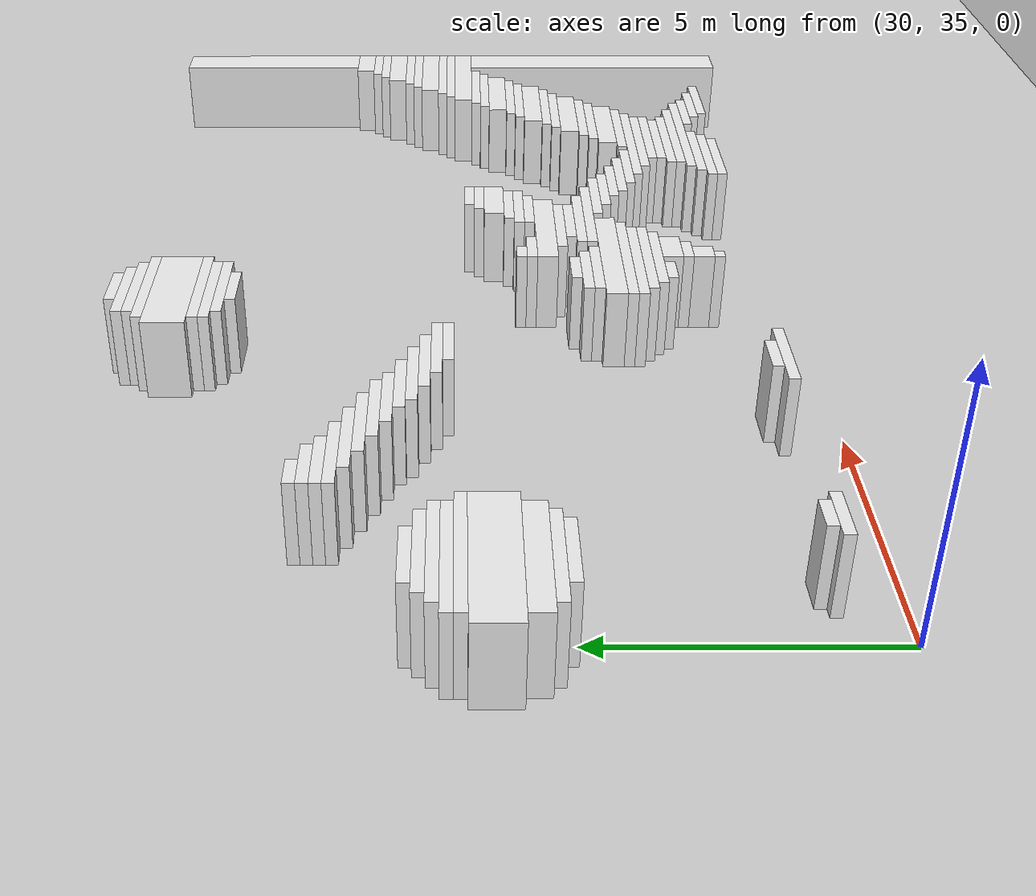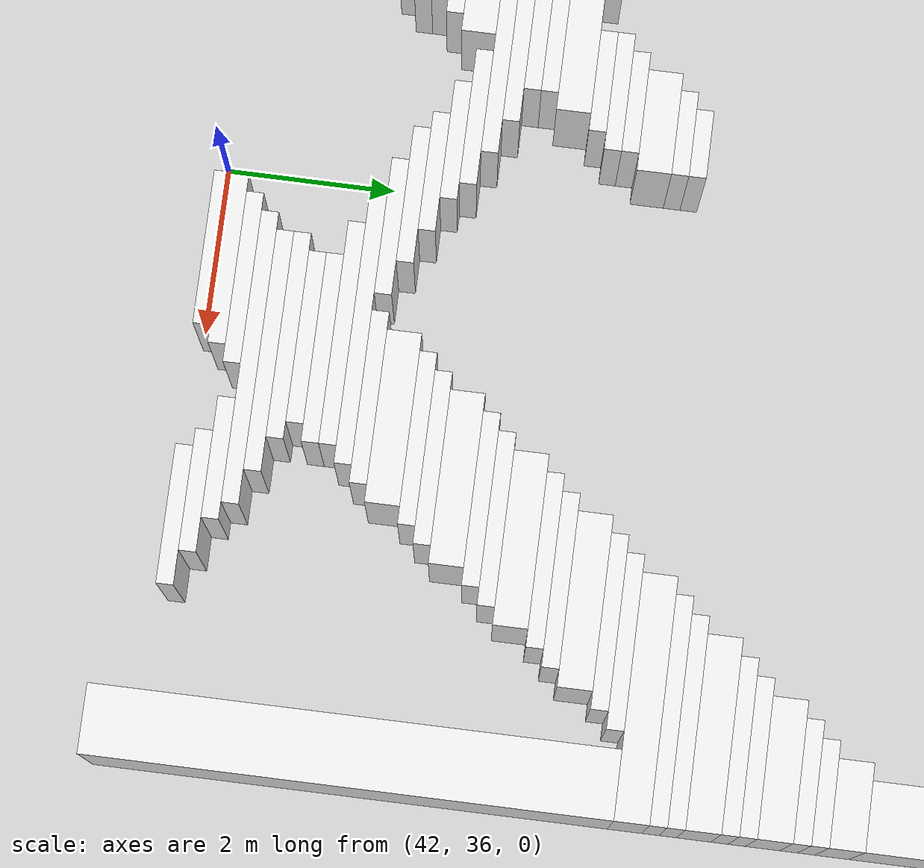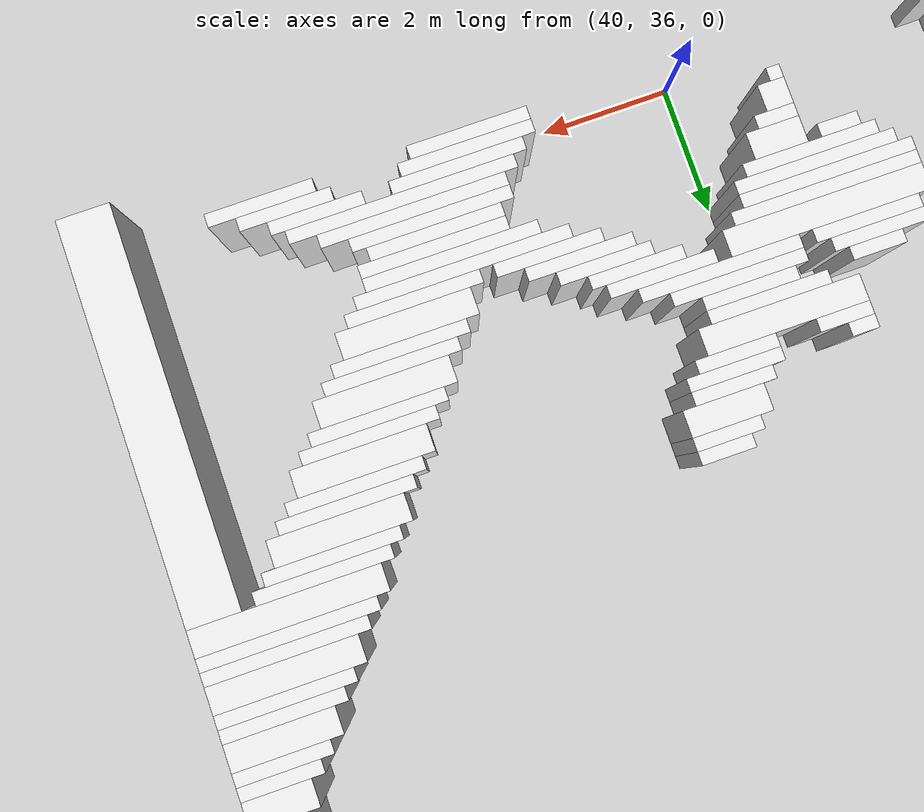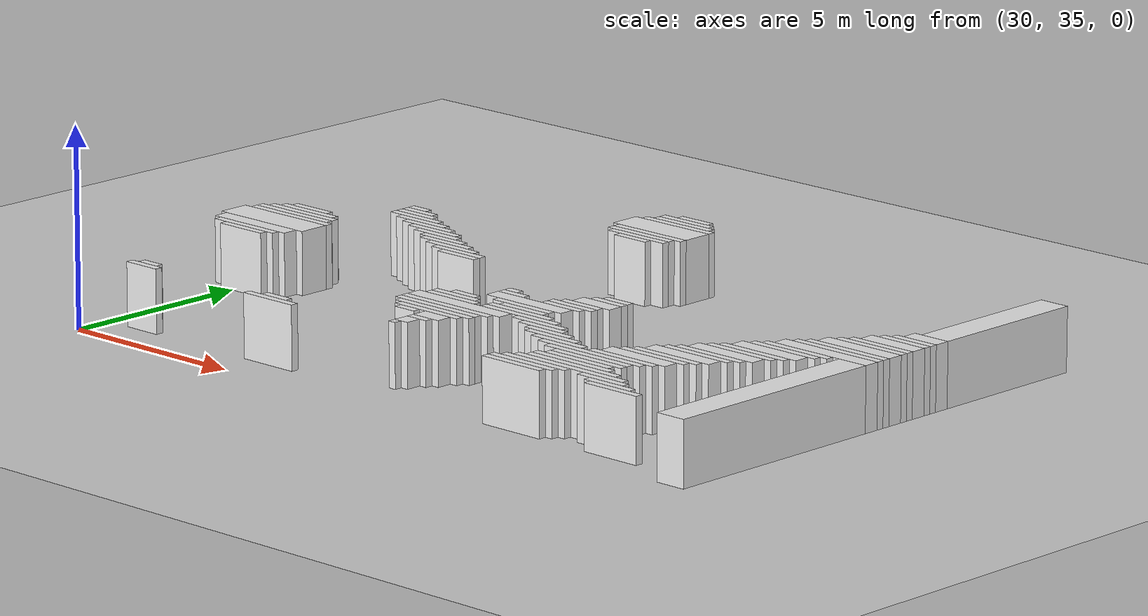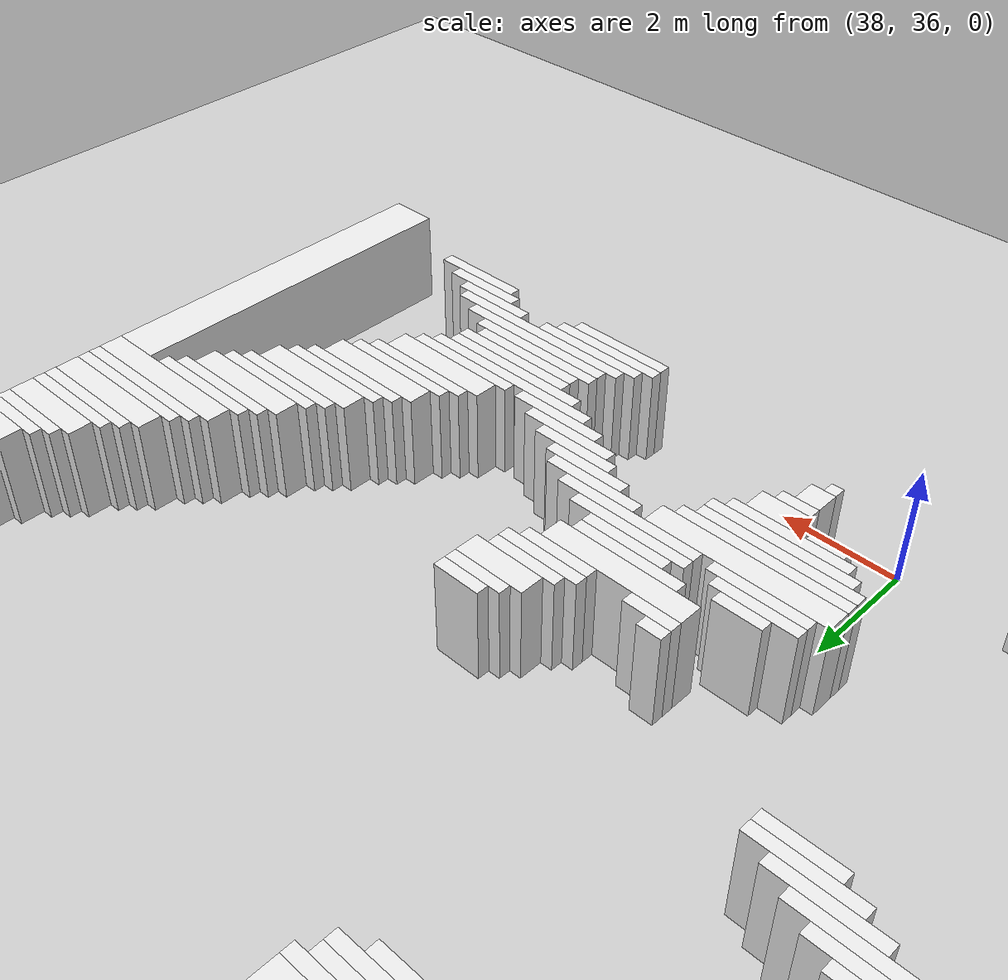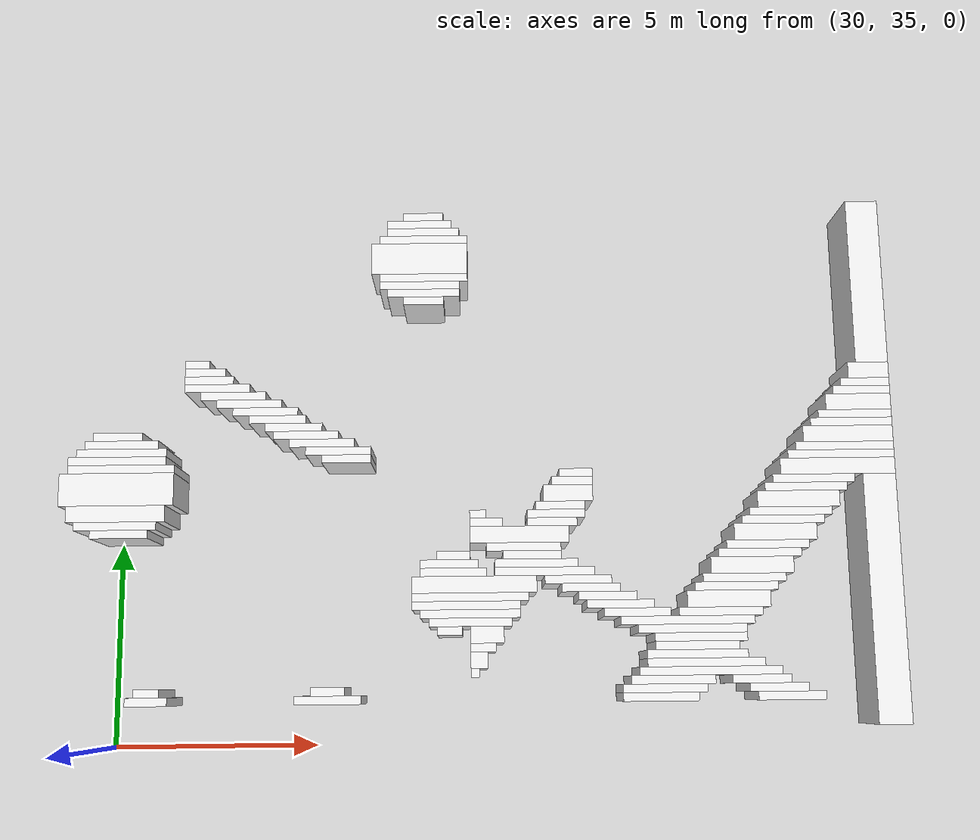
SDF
<sdf version="1.7">
 <world name="default">
  <model name="ground_plane">
   <static>1</static>
   <link name="link">
    <collision name="collision">
     <geometry><plane><normal>0 0 1</normal><size>120 120</size></plane></geometry>
    </collision>
    <visual name="visual">
     <geometry><plane><normal>0 0 1</normal><size>120 120</size></plane></geometry>
     <material>
      <script><uri>file://media/materials/scripts/gazebo.material</uri><name>Gazebo/Grey</name></script>
     </material>
    </visual>
   </link>
  </model>
  <model name="random_complex_03_model">
   <static>1</static>
   <link name="obs_7">
    <pose>37.7000 48.1000 0.8000 0 0 0</pose>
    <collision name="obs_7_col"><geometry><box><size>1.0000 0.2000 1.6000</size></box></geometry></collision>
    <visual name="obs_7_vis">
     <geometry><box><size>1.0000 0.2000 1.6000</size></box></geometry>
     <material>
      <script><uri>file://media/materials/scripts/gazebo.material</uri><name>Gazebo/White</name></script>
     </material>
    </visual>
   </link>
   <link name="obs_12">
    <pose>37.6000 47.9000 0.8000 0 0 0</pose>
    <collision name="obs_12_col"><geometry><box><size>1.6000 0.2000 1.6000</size></box></geometry></collision>
    <visual name="obs_12_vis">
     <geometry><box><size>1.6000 0.2000 1.6000</size></box></geometry>
     <material>
      <script><uri>file://media/materials/scripts/gazebo.material</uri><name>Gazebo/White</name></script>
     </material>
    </visual>
   </link>
   <link name="obs_17">
    <pose>37.7000 47.7000 0.8000 0 0 0</pose>
    <collision name="obs_17_col"><geometry><box><size>1.8000 0.2000 1.6000</size></box></geometry></collision>
    <visual name="obs_17_vis">
     <geometry><box><size>1.8000 0.2000 1.6000</size></box></geometry>
     <material>
      <script><uri>file://media/materials/scripts/gazebo.material</uri><name>Gazebo/White</name></script>
     </material>
    </visual>
   </link>
   <link name="obs_20">
    <pose>37.7000 47.5000 0.8000 0 0 0</pose>
    <collision name="obs_20_col"><geometry><box><size>2.2000 0.2000 1.6000</size></box></geometry></collision>
    <visual name="obs_20_vis">
     <geometry><box><size>2.2000 0.2000 1.6000</size></box></geometry>
     <material>
      <script><uri>file://media/materials/scripts/gazebo.material</uri><name>Gazebo/White</name></script>
     </material>
    </visual>
   </link>
   <link name="obs_32">
    <pose>37.6000 47.0000 0.8000 0 0 0</pose>
    <collision name="obs_32_col"><geometry><box><size>2.4000 0.8000 1.6000</size></box></geometry></collision>
    <visual name="obs_32_vis">
     <geometry><box><size>2.4000 0.8000 1.6000</size></box></geometry>
     <material>
      <script><uri>file://media/materials/scripts/gazebo.material</uri><name>Gazebo/White</name></script>
     </material>
    </visual>
   </link>
   <link name="obs_37">
    <pose>37.7000 46.5000 0.8000 0 0 0</pose>
    <collision name="obs_37_col"><geometry><box><size>2.2000 0.2000 1.6000</size></box></geometry></collision>
    <visual name="obs_37_vis">
     <geometry><box><size>2.2000 0.2000 1.6000</size></box></geometry>
     <material>
      <script><uri>file://media/materials/scripts/gazebo.material</uri><name>Gazebo/White</name></script>
     </material>
    </visual>
   </link>
   <link name="obs_41">
    <pose>37.6000 46.3000 0.8000 0 0 0</pose>
    <collision name="obs_41_col"><geometry><box><size>2.0000 0.2000 1.6000</size></box></geometry></collision>
    <visual name="obs_41_vis">
     <geometry><box><size>2.0000 0.2000 1.6000</size></box></geometry>
     <material>
      <script><uri>file://media/materials/scripts/gazebo.material</uri><name>Gazebo/White</name></script>
     </material>
    </visual>
   </link>
   <link name="obs_46">
    <pose>37.7000 46.1000 0.8000 0 0 0</pose>
    <collision name="obs_46_col"><geometry><box><size>1.8000 0.2000 1.6000</size></box></geometry></collision>
    <visual name="obs_46_vis">
     <geometry><box><size>1.8000 0.2000 1.6000</size></box></geometry>
     <material>
      <script><uri>file://media/materials/scripts/gazebo.material</uri><name>Gazebo/White</name></script>
     </material>
    </visual>
   </link>
   <link name="obs_52">
    <pose>37.7000 45.9000 0.8000 0 0 0</pose>
    <collision name="obs_52_col"><geometry><box><size>1.0000 0.2000 1.6000</size></box></geometry></collision>
    <visual name="obs_52_vis">
     <geometry><box><size>1.0000 0.2000 1.6000</size></box></geometry>
     <material>
      <script><uri>file://media/materials/scripts/gazebo.material</uri><name>Gazebo/White</name></script>
     </material>
    </visual>
   </link>
   <link name="obs_79">
    <pose>48.8000 46.3000 0.8000 0 0 0</pose>
    <collision name="obs_79_col"><geometry><box><size>0.8000 4.2000 1.6000</size></box></geometry></collision>
    <visual name="obs_79_vis">
     <geometry><box><size>0.8000 4.2000 1.6000</size></box></geometry>
     <material>
      <script><uri>file://media/materials/scripts/gazebo.material</uri><name>Gazebo/White</name></script>
     </material>
    </visual>
   </link>
   <link name="obs_86">
    <pose>32.1000 44.3000 0.8000 0 0 0</pose>
    <collision name="obs_86_col"><geometry><box><size>0.6000 0.2000 1.6000</size></box></geometry></collision>
    <visual name="obs_86_vis">
     <geometry><box><size>0.6000 0.2000 1.6000</size></box></geometry>
     <material>
      <script><uri>file://media/materials/scripts/gazebo.material</uri><name>Gazebo/White</name></script>
     </material>
    </visual>
   </link>
   <link name="obs_89">
    <pose>32.3000 44.1000 0.8000 0 0 0</pose>
    <collision name="obs_89_col"><geometry><box><size>1.0000 0.2000 1.6000</size></box></geometry></collision>
    <visual name="obs_89_vis">
     <geometry><box><size>1.0000 0.2000 1.6000</size></box></geometry>
     <material>
      <script><uri>file://media/materials/scripts/gazebo.material</uri><name>Gazebo/White</name></script>
     </material>
    </visual>
   </link>
   <link name="obs_90">
    <pose>48.7000 44.0000 0.8000 0 0 0</pose>
    <collision name="obs_90_col"><geometry><box><size>1.0000 0.4000 1.6000</size></box></geometry></collision>
    <visual name="obs_90_vis">
     <geometry><box><size>1.0000 0.4000 1.6000</size></box></geometry>
     <material>
      <script><uri>file://media/materials/scripts/gazebo.material</uri><name>Gazebo/White</name></script>
     </material>
    </visual>
   </link>
   <link name="obs_93">
    <pose>32.4000 43.9000 0.8000 0 0 0</pose>
    <collision name="obs_93_col"><geometry><box><size>1.2000 0.2000 1.6000</size></box></geometry></collision>
    <visual name="obs_93_vis">
     <geometry><box><size>1.2000 0.2000 1.6000</size></box></geometry>
     <material>
      <script><uri>file://media/materials/scripts/gazebo.material</uri><name>Gazebo/White</name></script>
     </material>
    </visual>
   </link>
   <link name="obs_98">
    <pose>32.6000 43.7000 0.8000 0 0 0</pose>
    <collision name="obs_98_col"><geometry><box><size>1.6000 0.2000 1.6000</size></box></geometry></collision>
    <visual name="obs_98_vis">
     <geometry><box><size>1.6000 0.2000 1.6000</size></box></geometry>
     <material>
      <script><uri>file://media/materials/scripts/gazebo.material</uri><name>Gazebo/White</name></script>
     </material>
    </visual>
   </link>
   <link name="obs_99">
    <pose>48.6000 43.7000 0.8000 0 0 0</pose>
    <collision name="obs_99_col"><geometry><box><size>1.2000 0.2000 1.6000</size></box></geometry></collision>
    <visual name="obs_99_vis">
     <geometry><box><size>1.2000 0.2000 1.6000</size></box></geometry>
     <material>
      <script><uri>file://media/materials/scripts/gazebo.material</uri><name>Gazebo/White</name></script>
     </material>
    </visual>
   </link>
   <link name="obs_106">
    <pose>33.0000 43.5000 0.8000 0 0 0</pose>
    <collision name="obs_106_col"><geometry><box><size>1.6000 0.2000 1.6000</size></box></geometry></collision>
    <visual name="obs_106_vis">
     <geometry><box><size>1.6000 0.2000 1.6000</size></box></geometry>
     <material>
      <script><uri>file://media/materials/scripts/gazebo.material</uri><name>Gazebo/White</name></script>
     </material>
    </visual>
   </link>
   <link name="obs_107">
    <pose>48.5000 43.5000 0.8000 0 0 0</pose>
    <collision name="obs_107_col"><geometry><box><size>1.4000 0.2000 1.6000</size></box></geometry></collision>
    <visual name="obs_107_vis">
     <geometry><box><size>1.4000 0.2000 1.6000</size></box></geometry>
     <material>
      <script><uri>file://media/materials/scripts/gazebo.material</uri><name>Gazebo/White</name></script>
     </material>
    </visual>
   </link>
   <link name="obs_113">
    <pose>33.4000 43.3000 0.8000 0 0 0</pose>
    <collision name="obs_113_col"><geometry><box><size>1.6000 0.2000 1.6000</size></box></geometry></collision>
    <visual name="obs_113_vis">
     <geometry><box><size>1.6000 0.2000 1.6000</size></box></geometry>
     <material>
      <script><uri>file://media/materials/scripts/gazebo.material</uri><name>Gazebo/White</name></script>
     </material>
    </visual>
   </link>
   <link name="obs_114">
    <pose>48.4000 43.2000 0.8000 0 0 0</pose>
    <collision name="obs_114_col"><geometry><box><size>1.6000 0.4000 1.6000</size></box></geometry></collision>
    <visual name="obs_114_vis">
     <geometry><box><size>1.6000 0.4000 1.6000</size></box></geometry>
     <material>
      <script><uri>file://media/materials/scripts/gazebo.material</uri><name>Gazebo/White</name></script>
     </material>
    </visual>
   </link>
   <link name="obs_119">
    <pose>33.8000 43.1000 0.8000 0 0 0</pose>
    <collision name="obs_119_col"><geometry><box><size>1.6000 0.2000 1.6000</size></box></geometry></collision>
    <visual name="obs_119_vis">
     <geometry><box><size>1.6000 0.2000 1.6000</size></box></geometry>
     <material>
      <script><uri>file://media/materials/scripts/gazebo.material</uri><name>Gazebo/White</name></script>
     </material>
    </visual>
   </link>
   <link name="obs_122">
    <pose>34.1000 42.9000 0.8000 0 0 0</pose>
    <collision name="obs_122_col"><geometry><box><size>1.4000 0.2000 1.6000</size></box></geometry></collision>
    <visual name="obs_122_vis">
     <geometry><box><size>1.4000 0.2000 1.6000</size></box></geometry>
     <material>
      <script><uri>file://media/materials/scripts/gazebo.material</uri><name>Gazebo/White</name></script>
     </material>
    </visual>
   </link>
   <link name="obs_123">
    <pose>48.3000 42.9000 0.8000 0 0 0</pose>
    <collision name="obs_123_col"><geometry><box><size>1.8000 0.2000 1.6000</size></box></geometry></collision>
    <visual name="obs_123_vis">
     <geometry><box><size>1.8000 0.2000 1.6000</size></box></geometry>
     <material>
      <script><uri>file://media/materials/scripts/gazebo.material</uri><name>Gazebo/White</name></script>
     </material>
    </visual>
   </link>
   <link name="obs_127">
    <pose>34.5000 42.7000 0.8000 0 0 0</pose>
    <collision name="obs_127_col"><geometry><box><size>1.4000 0.2000 1.6000</size></box></geometry></collision>
    <visual name="obs_127_vis">
     <geometry><box><size>1.4000 0.2000 1.6000</size></box></geometry>
     <material>
      <script><uri>file://media/materials/scripts/gazebo.material</uri><name>Gazebo/White</name></script>
     </material>
    </visual>
   </link>
   <link name="obs_128">
    <pose>48.2000 42.7000 0.8000 0 0 0</pose>
    <collision name="obs_128_col"><geometry><box><size>2.0000 0.2000 1.6000</size></box></geometry></collision>
    <visual name="obs_128_vis">
     <geometry><box><size>2.0000 0.2000 1.6000</size></box></geometry>
     <material>
      <script><uri>file://media/materials/scripts/gazebo.material</uri><name>Gazebo/White</name></script>
     </material>
    </visual>
   </link>
   <link name="obs_132">
    <pose>30.2000 42.5000 0.8000 0 0 0</pose>
    <collision name="obs_132_col"><geometry><box><size>1.2000 0.2000 1.6000</size></box></geometry></collision>
    <visual name="obs_132_vis">
     <geometry><box><size>1.2000 0.2000 1.6000</size></box></geometry>
     <material>
      <script><uri>file://media/materials/scripts/gazebo.material</uri><name>Gazebo/White</name></script>
     </material>
    </visual>
   </link>
   <link name="obs_133">
    <pose>34.8000 42.5000 0.8000 0 0 0</pose>
    <collision name="obs_133_col"><geometry><box><size>1.6000 0.2000 1.6000</size></box></geometry></collision>
    <visual name="obs_133_vis">
     <geometry><box><size>1.6000 0.2000 1.6000</size></box></geometry>
     <material>
      <script><uri>file://media/materials/scripts/gazebo.material</uri><name>Gazebo/White</name></script>
     </material>
    </visual>
   </link>
   <link name="obs_134">
    <pose>48.1000 42.4000 0.8000 0 0 0</pose>
    <collision name="obs_134_col"><geometry><box><size>2.2000 0.4000 1.6000</size></box></geometry></collision>
    <visual name="obs_134_vis">
     <geometry><box><size>2.2000 0.4000 1.6000</size></box></geometry>
     <material>
      <script><uri>file://media/materials/scripts/gazebo.material</uri><name>Gazebo/White</name></script>
     </material>
    </visual>
   </link>
   <link name="obs_136">
    <pose>30.3000 42.3000 0.8000 0 0 0</pose>
    <collision name="obs_136_col"><geometry><box><size>1.8000 0.2000 1.6000</size></box></geometry></collision>
    <visual name="obs_136_vis">
     <geometry><box><size>1.8000 0.2000 1.6000</size></box></geometry>
     <material>
      <script><uri>file://media/materials/scripts/gazebo.material</uri><name>Gazebo/White</name></script>
     </material>
    </visual>
   </link>
   <link name="obs_137">
    <pose>35.2000 42.3000 0.8000 0 0 0</pose>
    <collision name="obs_137_col"><geometry><box><size>1.6000 0.2000 1.6000</size></box></geometry></collision>
    <visual name="obs_137_vis">
     <geometry><box><size>1.6000 0.2000 1.6000</size></box></geometry>
     <material>
      <script><uri>file://media/materials/scripts/gazebo.material</uri><name>Gazebo/White</name></script>
     </material>
    </visual>
   </link>
   <link name="obs_144">
    <pose>30.3000 42.1000 0.8000 0 0 0</pose>
    <collision name="obs_144_col"><geometry><box><size>2.2000 0.2000 1.6000</size></box></geometry></collision>
    <visual name="obs_144_vis">
     <geometry><box><size>2.2000 0.2000 1.6000</size></box></geometry>
     <material>
      <script><uri>file://media/materials/scripts/gazebo.material</uri><name>Gazebo/White</name></script>
     </material>
    </visual>
   </link>
   <link name="obs_145">
    <pose>35.6000 42.1000 0.8000 0 0 0</pose>
    <collision name="obs_145_col"><geometry><box><size>1.6000 0.2000 1.6000</size></box></geometry></collision>
    <visual name="obs_145_vis">
     <geometry><box><size>1.6000 0.2000 1.6000</size></box></geometry>
     <material>
      <script><uri>file://media/materials/scripts/gazebo.material</uri><name>Gazebo/White</name></script>
     </material>
    </visual>
   </link>
   <link name="obs_146">
    <pose>48.0000 42.1000 0.8000 0 0 0</pose>
    <collision name="obs_146_col"><geometry><box><size>2.4000 0.2000 1.6000</size></box></geometry></collision>
    <visual name="obs_146_vis">
     <geometry><box><size>2.4000 0.2000 1.6000</size></box></geometry>
     <material>
      <script><uri>file://media/materials/scripts/gazebo.material</uri><name>Gazebo/White</name></script>
     </material>
    </visual>
   </link>
   <link name="obs_149">
    <pose>30.2000 41.9000 0.8000 0 0 0</pose>
    <collision name="obs_149_col"><geometry><box><size>2.4000 0.2000 1.6000</size></box></geometry></collision>
    <visual name="obs_149_vis">
     <geometry><box><size>2.4000 0.2000 1.6000</size></box></geometry>
     <material>
      <script><uri>file://media/materials/scripts/gazebo.material</uri><name>Gazebo/White</name></script>
     </material>
    </visual>
   </link>
   <link name="obs_150">
    <pose>35.8000 41.9000 0.8000 0 0 0</pose>
    <collision name="obs_150_col"><geometry><box><size>1.2000 0.2000 1.6000</size></box></geometry></collision>
    <visual name="obs_150_vis">
     <geometry><box><size>1.2000 0.2000 1.6000</size></box></geometry>
     <material>
      <script><uri>file://media/materials/scripts/gazebo.material</uri><name>Gazebo/White</name></script>
     </material>
    </visual>
   </link>
   <link name="obs_151">
    <pose>47.9000 41.9000 0.8000 0 0 0</pose>
    <collision name="obs_151_col"><geometry><box><size>2.6000 0.2000 1.6000</size></box></geometry></collision>
    <visual name="obs_151_vis">
     <geometry><box><size>2.6000 0.2000 1.6000</size></box></geometry>
     <material>
      <script><uri>file://media/materials/scripts/gazebo.material</uri><name>Gazebo/White</name></script>
     </material>
    </visual>
   </link>
   <link name="obs_153">
    <pose>30.3000 41.7000 0.8000 0 0 0</pose>
    <collision name="obs_153_col"><geometry><box><size>2.6000 0.2000 1.6000</size></box></geometry></collision>
    <visual name="obs_153_vis">
     <geometry><box><size>2.6000 0.2000 1.6000</size></box></geometry>
     <material>
      <script><uri>file://media/materials/scripts/gazebo.material</uri><name>Gazebo/White</name></script>
     </material>
    </visual>
   </link>
   <link name="obs_154">
    <pose>47.8000 41.6000 0.8000 0 0 0</pose>
    <collision name="obs_154_col"><geometry><box><size>2.8000 0.4000 1.6000</size></box></geometry></collision>
    <visual name="obs_154_vis">
     <geometry><box><size>2.8000 0.4000 1.6000</size></box></geometry>
     <material>
      <script><uri>file://media/materials/scripts/gazebo.material</uri><name>Gazebo/White</name></script>
     </material>
    </visual>
   </link>
   <link name="obs_156">
    <pose>41.4000 41.5000 0.8000 0 0 0</pose>
    <collision name="obs_156_col"><geometry><box><size>0.8000 0.2000 1.6000</size></box></geometry></collision>
    <visual name="obs_156_vis">
     <geometry><box><size>0.8000 0.2000 1.6000</size></box></geometry>
     <material>
      <script><uri>file://media/materials/scripts/gazebo.material</uri><name>Gazebo/White</name></script>
     </material>
    </visual>
   </link>
   <link name="obs_159">
    <pose>41.3000 41.3000 0.8000 0 0 0</pose>
    <collision name="obs_159_col"><geometry><box><size>1.0000 0.2000 1.6000</size></box></geometry></collision>
    <visual name="obs_159_vis">
     <geometry><box><size>1.0000 0.2000 1.6000</size></box></geometry>
     <material>
      <script><uri>file://media/materials/scripts/gazebo.material</uri><name>Gazebo/White</name></script>
     </material>
    </visual>
   </link>
   <link name="obs_160">
    <pose>47.2000 41.3000 0.8000 0 0 0</pose>
    <collision name="obs_160_col"><geometry><box><size>2.0000 0.2000 1.6000</size></box></geometry></collision>
    <visual name="obs_160_vis">
     <geometry><box><size>2.0000 0.2000 1.6000</size></box></geometry>
     <material>
      <script><uri>file://media/materials/scripts/gazebo.material</uri><name>Gazebo/White</name></script>
     </material>
    </visual>
   </link>
   <link name="obs_163">
    <pose>47.0000 41.1000 0.8000 0 0 0</pose>
    <collision name="obs_163_col"><geometry><box><size>2.0000 0.2000 1.6000</size></box></geometry></collision>
    <visual name="obs_163_vis">
     <geometry><box><size>2.0000 0.2000 1.6000</size></box></geometry>
     <material>
      <script><uri>file://media/materials/scripts/gazebo.material</uri><name>Gazebo/White</name></script>
     </material>
    </visual>
   </link>
   <link name="obs_164">
    <pose>30.2000 41.2000 0.8000 0 0 0</pose>
    <collision name="obs_164_col"><geometry><box><size>2.8000 0.8000 1.6000</size></box></geometry></collision>
    <visual name="obs_164_vis">
     <geometry><box><size>2.8000 0.8000 1.6000</size></box></geometry>
     <material>
      <script><uri>file://media/materials/scripts/gazebo.material</uri><name>Gazebo/White</name></script>
     </material>
    </visual>
   </link>
   <link name="obs_165">
    <pose>41.2000 41.0000 0.8000 0 0 0</pose>
    <collision name="obs_165_col"><geometry><box><size>1.2000 0.4000 1.6000</size></box></geometry></collision>
    <visual name="obs_165_vis">
     <geometry><box><size>1.2000 0.4000 1.6000</size></box></geometry>
     <material>
      <script><uri>file://media/materials/scripts/gazebo.material</uri><name>Gazebo/White</name></script>
     </material>
    </visual>
   </link>
   <link name="obs_169">
    <pose>46.8000 40.8000 0.8000 0 0 0</pose>
    <collision name="obs_169_col"><geometry><box><size>2.0000 0.4000 1.6000</size></box></geometry></collision>
    <visual name="obs_169_vis">
     <geometry><box><size>2.0000 0.4000 1.6000</size></box></geometry>
     <material>
      <script><uri>file://media/materials/scripts/gazebo.material</uri><name>Gazebo/White</name></script>
     </material>
    </visual>
   </link>
   <link name="obs_172">
    <pose>41.0000 40.7000 0.8000 0 0 0</pose>
    <collision name="obs_172_col"><geometry><box><size>1.2000 0.2000 1.6000</size></box></geometry></collision>
    <visual name="obs_172_vis">
     <geometry><box><size>1.2000 0.2000 1.6000</size></box></geometry>
     <material>
      <script><uri>file://media/materials/scripts/gazebo.material</uri><name>Gazebo/White</name></script>
     </material>
    </visual>
   </link>
   <link name="obs_173">
    <pose>30.2000 40.6000 0.8000 0 0 0</pose>
    <collision name="obs_173_col"><geometry><box><size>2.4000 0.4000 1.6000</size></box></geometry></collision>
    <visual name="obs_173_vis">
     <geometry><box><size>2.4000 0.4000 1.6000</size></box></geometry>
     <material>
      <script><uri>file://media/materials/scripts/gazebo.material</uri><name>Gazebo/White</name></script>
     </material>
    </visual>
   </link>
   <link name="obs_176">
    <pose>39.0000 40.5000 0.8000 0 0 0</pose>
    <collision name="obs_176_col"><geometry><box><size>0.4000 0.2000 1.6000</size></box></geometry></collision>
    <visual name="obs_176_vis">
     <geometry><box><size>0.4000 0.2000 1.6000</size></box></geometry>
     <material>
      <script><uri>file://media/materials/scripts/gazebo.material</uri><name>Gazebo/White</name></script>
     </material>
    </visual>
   </link>
   <link name="obs_177">
    <pose>40.9000 40.5000 0.8000 0 0 0</pose>
    <collision name="obs_177_col"><geometry><box><size>1.4000 0.2000 1.6000</size></box></geometry></collision>
    <visual name="obs_177_vis">
     <geometry><box><size>1.4000 0.2000 1.6000</size></box></geometry>
     <material>
      <script><uri>file://media/materials/scripts/gazebo.material</uri><name>Gazebo/White</name></script>
     </material>
    </visual>
   </link>
   <link name="obs_178">
    <pose>46.6000 40.5000 0.8000 0 0 0</pose>
    <collision name="obs_178_col"><geometry><box><size>2.0000 0.2000 1.6000</size></box></geometry></collision>
    <visual name="obs_178_vis">
     <geometry><box><size>2.0000 0.2000 1.6000</size></box></geometry>
     <material>
      <script><uri>file://media/materials/scripts/gazebo.material</uri><name>Gazebo/White</name></script>
     </material>
    </visual>
   </link>
   <link name="obs_182">
    <pose>30.2000 40.3000 0.8000 0 0 0</pose>
    <collision name="obs_182_col"><geometry><box><size>2.0000 0.2000 1.6000</size></box></geometry></collision>
    <visual name="obs_182_vis">
     <geometry><box><size>2.0000 0.2000 1.6000</size></box></geometry>
     <material>
      <script><uri>file://media/materials/scripts/gazebo.material</uri><name>Gazebo/White</name></script>
     </material>
    </visual>
   </link>
   <link name="obs_183">
    <pose>39.2000 40.3000 0.8000 0 0 0</pose>
    <collision name="obs_183_col"><geometry><box><size>0.8000 0.2000 1.6000</size></box></geometry></collision>
    <visual name="obs_183_vis">
     <geometry><box><size>0.8000 0.2000 1.6000</size></box></geometry>
     <material>
      <script><uri>file://media/materials/scripts/gazebo.material</uri><name>Gazebo/White</name></script>
     </material>
    </visual>
   </link>
   <link name="obs_184">
    <pose>40.8000 40.3000 0.8000 0 0 0</pose>
    <collision name="obs_184_col"><geometry><box><size>1.2000 0.2000 1.6000</size></box></geometry></collision>
    <visual name="obs_184_vis">
     <geometry><box><size>1.2000 0.2000 1.6000</size></box></geometry>
     <material>
      <script><uri>file://media/materials/scripts/gazebo.material</uri><name>Gazebo/White</name></script>
     </material>
    </visual>
   </link>
   <link name="obs_185">
    <pose>46.4000 40.3000 0.8000 0 0 0</pose>
    <collision name="obs_185_col"><geometry><box><size>2.0000 0.2000 1.6000</size></box></geometry></collision>
    <visual name="obs_185_vis">
     <geometry><box><size>2.0000 0.2000 1.6000</size></box></geometry>
     <material>
      <script><uri>file://media/materials/scripts/gazebo.material</uri><name>Gazebo/White</name></script>
     </material>
    </visual>
   </link>
   <link name="obs_190">
    <pose>30.3000 40.1000 0.8000 0 0 0</pose>
    <collision name="obs_190_col"><geometry><box><size>1.4000 0.2000 1.6000</size></box></geometry></collision>
    <visual name="obs_190_vis">
     <geometry><box><size>1.4000 0.2000 1.6000</size></box></geometry>
     <material>
      <script><uri>file://media/materials/scripts/gazebo.material</uri><name>Gazebo/White</name></script>
     </material>
    </visual>
   </link>
   <link name="obs_191">
    <pose>40.0000 40.0000 0.8000 0 0 0</pose>
    <collision name="obs_191_col"><geometry><box><size>2.4000 0.4000 1.6000</size></box></geometry></collision>
    <visual name="obs_191_vis">
     <geometry><box><size>2.4000 0.4000 1.6000</size></box></geometry>
     <material>
      <script><uri>file://media/materials/scripts/gazebo.material</uri><name>Gazebo/White</name></script>
     </material>
    </visual>
   </link>
   <link name="obs_192">
    <pose>46.2000 40.0000 0.8000 0 0 0</pose>
    <collision name="obs_192_col"><geometry><box><size>2.0000 0.4000 1.6000</size></box></geometry></collision>
    <visual name="obs_192_vis">
     <geometry><box><size>2.0000 0.4000 1.6000</size></box></geometry>
     <material>
      <script><uri>file://media/materials/scripts/gazebo.material</uri><name>Gazebo/White</name></script>
     </material>
    </visual>
   </link>
   <link name="obs_198">
    <pose>40.1000 39.7000 0.8000 0 0 0</pose>
    <collision name="obs_198_col"><geometry><box><size>1.8000 0.2000 1.6000</size></box></geometry></collision>
    <visual name="obs_198_vis">
     <geometry><box><size>1.8000 0.2000 1.6000</size></box></geometry>
     <material>
      <script><uri>file://media/materials/scripts/gazebo.material</uri><name>Gazebo/White</name></script>
     </material>
    </visual>
   </link>
   <link name="obs_199">
    <pose>46.0000 39.7000 0.8000 0 0 0</pose>
    <collision name="obs_199_col"><geometry><box><size>2.0000 0.2000 1.6000</size></box></geometry></collision>
    <visual name="obs_199_vis">
     <geometry><box><size>2.0000 0.2000 1.6000</size></box></geometry>
     <material>
      <script><uri>file://media/materials/scripts/gazebo.material</uri><name>Gazebo/White</name></script>
     </material>
    </visual>
   </link>
   <link name="obs_203">
    <pose>38.4000 39.5000 0.8000 0 0 0</pose>
    <collision name="obs_203_col"><geometry><box><size>0.8000 0.2000 1.6000</size></box></geometry></collision>
    <visual name="obs_203_vis">
     <geometry><box><size>0.8000 0.2000 1.6000</size></box></geometry>
     <material>
      <script><uri>file://media/materials/scripts/gazebo.material</uri><name>Gazebo/White</name></script>
     </material>
    </visual>
   </link>
   <link name="obs_204">
    <pose>40.3000 39.5000 0.8000 0 0 0</pose>
    <collision name="obs_204_col"><geometry><box><size>1.4000 0.2000 1.6000</size></box></geometry></collision>
    <visual name="obs_204_vis">
     <geometry><box><size>1.4000 0.2000 1.6000</size></box></geometry>
     <material>
      <script><uri>file://media/materials/scripts/gazebo.material</uri><name>Gazebo/White</name></script>
     </material>
    </visual>
   </link>
   <link name="obs_205">
    <pose>45.8000 39.5000 0.8000 0 0 0</pose>
    <collision name="obs_205_col"><geometry><box><size>2.0000 0.2000 1.6000</size></box></geometry></collision>
    <visual name="obs_205_vis">
     <geometry><box><size>2.0000 0.2000 1.6000</size></box></geometry>
     <material>
      <script><uri>file://media/materials/scripts/gazebo.material</uri><name>Gazebo/White</name></script>
     </material>
    </visual>
   </link>
   <link name="obs_209">
    <pose>38.3000 39.3000 0.8000 0 0 0</pose>
    <collision name="obs_209_col"><geometry><box><size>1.4000 0.2000 1.6000</size></box></geometry></collision>
    <visual name="obs_209_vis">
     <geometry><box><size>1.4000 0.2000 1.6000</size></box></geometry>
     <material>
      <script><uri>file://media/materials/scripts/gazebo.material</uri><name>Gazebo/White</name></script>
     </material>
    </visual>
   </link>
   <link name="obs_210">
    <pose>40.4000 39.3000 0.8000 0 0 0</pose>
    <collision name="obs_210_col"><geometry><box><size>2.0000 0.2000 1.6000</size></box></geometry></collision>
    <visual name="obs_210_vis">
     <geometry><box><size>2.0000 0.2000 1.6000</size></box></geometry>
     <material>
      <script><uri>file://media/materials/scripts/gazebo.material</uri><name>Gazebo/White</name></script>
     </material>
    </visual>
   </link>
   <link name="obs_214">
    <pose>45.6000 39.2000 0.8000 0 0 0</pose>
    <collision name="obs_214_col"><geometry><box><size>2.0000 0.4000 1.6000</size></box></geometry></collision>
    <visual name="obs_214_vis">
     <geometry><box><size>2.0000 0.4000 1.6000</size></box></geometry>
     <material>
      <script><uri>file://media/materials/scripts/gazebo.material</uri><name>Gazebo/White</name></script>
     </material>
    </visual>
   </link>
   <link name="obs_218">
    <pose>38.4000 39.1000 0.8000 0 0 0</pose>
    <collision name="obs_218_col"><geometry><box><size>1.6000 0.2000 1.6000</size></box></geometry></collision>
    <visual name="obs_218_vis">
     <geometry><box><size>1.6000 0.2000 1.6000</size></box></geometry>
     <material>
      <script><uri>file://media/materials/scripts/gazebo.material</uri><name>Gazebo/White</name></script>
     </material>
    </visual>
   </link>
   <link name="obs_219">
    <pose>40.6000 39.1000 0.8000 0 0 0</pose>
    <collision name="obs_219_col"><geometry><box><size>2.4000 0.2000 1.6000</size></box></geometry></collision>
    <visual name="obs_219_vis">
     <geometry><box><size>2.4000 0.2000 1.6000</size></box></geometry>
     <material>
      <script><uri>file://media/materials/scripts/gazebo.material</uri><name>Gazebo/White</name></script>
     </material>
    </visual>
   </link>
   <link name="obs_226">
    <pose>41.4000 38.9000 0.8000 0 0 0</pose>
    <collision name="obs_226_col"><geometry><box><size>1.6000 0.2000 1.6000</size></box></geometry></collision>
    <visual name="obs_226_vis">
     <geometry><box><size>1.6000 0.2000 1.6000</size></box></geometry>
     <material>
      <script><uri>file://media/materials/scripts/gazebo.material</uri><name>Gazebo/White</name></script>
     </material>
    </visual>
   </link>
   <link name="obs_227">
    <pose>45.4000 38.9000 0.8000 0 0 0</pose>
    <collision name="obs_227_col"><geometry><box><size>2.0000 0.2000 1.6000</size></box></geometry></collision>
    <visual name="obs_227_vis">
     <geometry><box><size>2.0000 0.2000 1.6000</size></box></geometry>
     <material>
      <script><uri>file://media/materials/scripts/gazebo.material</uri><name>Gazebo/White</name></script>
     </material>
    </visual>
   </link>
   <link name="obs_228">
    <pose>38.9000 38.8000 0.8000 0 0 0</pose>
    <collision name="obs_228_col"><geometry><box><size>3.0000 0.4000 1.6000</size></box></geometry></collision>
    <visual name="obs_228_vis">
     <geometry><box><size>3.0000 0.4000 1.6000</size></box></geometry>
     <material>
      <script><uri>file://media/materials/scripts/gazebo.material</uri><name>Gazebo/White</name></script>
     </material>
    </visual>
   </link>
   <link name="obs_231">
    <pose>41.7000 38.7000 0.8000 0 0 0</pose>
    <collision name="obs_231_col"><geometry><box><size>1.4000 0.2000 1.6000</size></box></geometry></collision>
    <visual name="obs_231_vis">
     <geometry><box><size>1.4000 0.2000 1.6000</size></box></geometry>
     <material>
      <script><uri>file://media/materials/scripts/gazebo.material</uri><name>Gazebo/White</name></script>
     </material>
    </visual>
   </link>
   <link name="obs_232">
    <pose>45.2000 38.7000 0.8000 0 0 0</pose>
    <collision name="obs_232_col"><geometry><box><size>2.0000 0.2000 1.6000</size></box></geometry></collision>
    <visual name="obs_232_vis">
     <geometry><box><size>2.0000 0.2000 1.6000</size></box></geometry>
     <material>
      <script><uri>file://media/materials/scripts/gazebo.material</uri><name>Gazebo/White</name></script>
     </material>
    </visual>
   </link>
   <link name="obs_239">
    <pose>38.8000 38.5000 0.8000 0 0 0</pose>
    <collision name="obs_239_col"><geometry><box><size>2.8000 0.2000 1.6000</size></box></geometry></collision>
    <visual name="obs_239_vis">
     <geometry><box><size>2.8000 0.2000 1.6000</size></box></geometry>
     <material>
      <script><uri>file://media/materials/scripts/gazebo.material</uri><name>Gazebo/White</name></script>
     </material>
    </visual>
   </link>
   <link name="obs_240">
    <pose>42.1000 38.5000 0.8000 0 0 0</pose>
    <collision name="obs_240_col"><geometry><box><size>1.4000 0.2000 1.6000</size></box></geometry></collision>
    <visual name="obs_240_vis">
     <geometry><box><size>1.4000 0.2000 1.6000</size></box></geometry>
     <material>
      <script><uri>file://media/materials/scripts/gazebo.material</uri><name>Gazebo/White</name></script>
     </material>
    </visual>
   </link>
   <link name="obs_241">
    <pose>45.0000 38.4000 0.8000 0 0 0</pose>
    <collision name="obs_241_col"><geometry><box><size>2.0000 0.4000 1.6000</size></box></geometry></collision>
    <visual name="obs_241_vis">
     <geometry><box><size>2.0000 0.4000 1.6000</size></box></geometry>
     <material>
      <script><uri>file://media/materials/scripts/gazebo.material</uri><name>Gazebo/White</name></script>
     </material>
    </visual>
   </link>
   <link name="obs_243">
    <pose>38.7000 38.3000 0.8000 0 0 0</pose>
    <collision name="obs_243_col"><geometry><box><size>2.6000 0.2000 1.6000</size></box></geometry></collision>
    <visual name="obs_243_vis">
     <geometry><box><size>2.6000 0.2000 1.6000</size></box></geometry>
     <material>
      <script><uri>file://media/materials/scripts/gazebo.material</uri><name>Gazebo/White</name></script>
     </material>
    </visual>
   </link>
   <link name="obs_244">
    <pose>42.4000 38.3000 0.8000 0 0 0</pose>
    <collision name="obs_244_col"><geometry><box><size>1.6000 0.2000 1.6000</size></box></geometry></collision>
    <visual name="obs_244_vis">
     <geometry><box><size>1.6000 0.2000 1.6000</size></box></geometry>
     <material>
      <script><uri>file://media/materials/scripts/gazebo.material</uri><name>Gazebo/White</name></script>
     </material>
    </visual>
   </link>
   <link name="obs_247">
    <pose>38.8000 38.1000 0.8000 0 0 0</pose>
    <collision name="obs_247_col"><geometry><box><size>2.4000 0.2000 1.6000</size></box></geometry></collision>
    <visual name="obs_247_vis">
     <geometry><box><size>2.4000 0.2000 1.6000</size></box></geometry>
     <material>
      <script><uri>file://media/materials/scripts/gazebo.material</uri><name>Gazebo/White</name></script>
     </material>
    </visual>
   </link>
   <link name="obs_248">
    <pose>42.8000 38.1000 0.8000 0 0 0</pose>
    <collision name="obs_248_col"><geometry><box><size>1.6000 0.2000 1.6000</size></box></geometry></collision>
    <visual name="obs_248_vis">
     <geometry><box><size>1.6000 0.2000 1.6000</size></box></geometry>
     <material>
      <script><uri>file://media/materials/scripts/gazebo.material</uri><name>Gazebo/White</name></script>
     </material>
    </visual>
   </link>
   <link name="obs_249">
    <pose>44.8000 38.1000 0.8000 0 0 0</pose>
    <collision name="obs_249_col"><geometry><box><size>2.0000 0.2000 1.6000</size></box></geometry></collision>
    <visual name="obs_249_vis">
     <geometry><box><size>2.0000 0.2000 1.6000</size></box></geometry>
     <material>
      <script><uri>file://media/materials/scripts/gazebo.material</uri><name>Gazebo/White</name></script>
     </material>
    </visual>
   </link>
   <link name="obs_250">
    <pose>38.8000 37.9000 0.8000 0 0 0</pose>
    <collision name="obs_250_col"><geometry><box><size>2.0000 0.2000 1.6000</size></box></geometry></collision>
    <visual name="obs_250_vis">
     <geometry><box><size>2.0000 0.2000 1.6000</size></box></geometry>
     <material>
      <script><uri>file://media/materials/scripts/gazebo.material</uri><name>Gazebo/White</name></script>
     </material>
    </visual>
   </link>
   <link name="obs_251">
    <pose>44.0000 37.9000 0.8000 0 0 0</pose>
    <collision name="obs_251_col"><geometry><box><size>3.2000 0.2000 1.6000</size></box></geometry></collision>
    <visual name="obs_251_vis">
     <geometry><box><size>3.2000 0.2000 1.6000</size></box></geometry>
     <material>
      <script><uri>file://media/materials/scripts/gazebo.material</uri><name>Gazebo/White</name></script>
     </material>
    </visual>
   </link>
   <link name="obs_253">
    <pose>38.3000 37.7000 0.8000 0 0 0</pose>
    <collision name="obs_253_col"><geometry><box><size>0.6000 0.2000 1.6000</size></box></geometry></collision>
    <visual name="obs_253_vis">
     <geometry><box><size>0.6000 0.2000 1.6000</size></box></geometry>
     <material>
      <script><uri>file://media/materials/scripts/gazebo.material</uri><name>Gazebo/White</name></script>
     </material>
    </visual>
   </link>
   <link name="obs_254">
    <pose>44.1000 37.7000 0.8000 0 0 0</pose>
    <collision name="obs_254_col"><geometry><box><size>2.6000 0.2000 1.6000</size></box></geometry></collision>
    <visual name="obs_254_vis">
     <geometry><box><size>2.6000 0.2000 1.6000</size></box></geometry>
     <material>
      <script><uri>file://media/materials/scripts/gazebo.material</uri><name>Gazebo/White</name></script>
     </material>
    </visual>
   </link>
   <link name="obs_255">
    <pose>39.2000 37.6000 0.8000 0 0 0</pose>
    <collision name="obs_255_col"><geometry><box><size>0.8000 0.4000 1.6000</size></box></geometry></collision>
    <visual name="obs_255_vis">
     <geometry><box><size>0.8000 0.4000 1.6000</size></box></geometry>
     <material>
      <script><uri>file://media/materials/scripts/gazebo.material</uri><name>Gazebo/White</name></script>
     </material>
    </visual>
   </link>
   <link name="obs_257">
    <pose>44.3000 37.5000 0.8000 0 0 0</pose>
    <collision name="obs_257_col"><geometry><box><size>2.2000 0.2000 1.6000</size></box></geometry></collision>
    <visual name="obs_257_vis">
     <geometry><box><size>2.2000 0.2000 1.6000</size></box></geometry>
     <material>
      <script><uri>file://media/materials/scripts/gazebo.material</uri><name>Gazebo/White</name></script>
     </material>
    </visual>
   </link>
   <link name="obs_258">
    <pose>39.1000 37.3000 0.8000 0 0 0</pose>
    <collision name="obs_258_col"><geometry><box><size>0.6000 0.2000 1.6000</size></box></geometry></collision>
    <visual name="obs_258_vis">
     <geometry><box><size>0.6000 0.2000 1.6000</size></box></geometry>
     <material>
      <script><uri>file://media/materials/scripts/gazebo.material</uri><name>Gazebo/White</name></script>
     </material>
    </visual>
   </link>
   <link name="obs_259">
    <pose>44.2000 37.3000 0.8000 0 0 0</pose>
    <collision name="obs_259_col"><geometry><box><size>2.0000 0.2000 1.6000</size></box></geometry></collision>
    <visual name="obs_259_vis">
     <geometry><box><size>2.0000 0.2000 1.6000</size></box></geometry>
     <material>
      <script><uri>file://media/materials/scripts/gazebo.material</uri><name>Gazebo/White</name></script>
     </material>
    </visual>
   </link>
   <link name="obs_262">
    <pose>44.2000 37.1000 0.8000 0 0 0</pose>
    <collision name="obs_262_col"><geometry><box><size>2.4000 0.2000 1.6000</size></box></geometry></collision>
    <visual name="obs_262_vis">
     <geometry><box><size>2.4000 0.2000 1.6000</size></box></geometry>
     <material>
      <script><uri>file://media/materials/scripts/gazebo.material</uri><name>Gazebo/White</name></script>
     </material>
    </visual>
   </link>
   <link name="obs_263">
    <pose>39.0000 37.0000 0.8000 0 0 0</pose>
    <collision name="obs_263_col"><geometry><box><size>0.4000 0.4000 1.6000</size></box></geometry></collision>
    <visual name="obs_263_vis">
     <geometry><box><size>0.4000 0.4000 1.6000</size></box></geometry>
     <material>
      <script><uri>file://media/materials/scripts/gazebo.material</uri><name>Gazebo/White</name></script>
     </material>
    </visual>
   </link>
   <link name="obs_266">
    <pose>44.4000 36.9000 0.8000 0 0 0</pose>
    <collision name="obs_266_col"><geometry><box><size>2.8000 0.2000 1.6000</size></box></geometry></collision>
    <visual name="obs_266_vis">
     <geometry><box><size>2.8000 0.2000 1.6000</size></box></geometry>
     <material>
      <script><uri>file://media/materials/scripts/gazebo.material</uri><name>Gazebo/White</name></script>
     </material>
    </visual>
   </link>
   <link name="obs_271">
    <pose>38.9000 36.7000 0.8000 0 0 0</pose>
    <collision name="obs_271_col"><geometry><box><size>0.2000 0.2000 1.6000</size></box></geometry></collision>
    <visual name="obs_271_vis">
     <geometry><box><size>0.2000 0.2000 1.6000</size></box></geometry>
     <material>
      <script><uri>file://media/materials/scripts/gazebo.material</uri><name>Gazebo/White</name></script>
     </material>
    </visual>
   </link>
   <link name="obs_272">
    <pose>44.5000 36.7000 0.8000 0 0 0</pose>
    <collision name="obs_272_col"><geometry><box><size>3.4000 0.2000 1.6000</size></box></geometry></collision>
    <visual name="obs_272_vis">
     <geometry><box><size>3.4000 0.2000 1.6000</size></box></geometry>
     <material>
      <script><uri>file://media/materials/scripts/gazebo.material</uri><name>Gazebo/White</name></script>
     </material>
    </visual>
   </link>
   <link name="obs_276">
    <pose>43.6000 36.5000 0.8000 0 0 0</pose>
    <collision name="obs_276_col"><geometry><box><size>2.0000 0.2000 1.6000</size></box></geometry></collision>
    <visual name="obs_276_vis">
     <geometry><box><size>2.0000 0.2000 1.6000</size></box></geometry>
     <material>
      <script><uri>file://media/materials/scripts/gazebo.material</uri><name>Gazebo/White</name></script>
     </material>
    </visual>
   </link>
   <link name="obs_277">
    <pose>45.7000 36.5000 0.8000 0 0 0</pose>
    <collision name="obs_277_col"><geometry><box><size>1.4000 0.2000 1.6000</size></box></geometry></collision>
    <visual name="obs_277_vis">
     <geometry><box><size>1.4000 0.2000 1.6000</size></box></geometry>
     <material>
      <script><uri>file://media/materials/scripts/gazebo.material</uri><name>Gazebo/White</name></script>
     </material>
    </visual>
   </link>
   <link name="obs_282">
    <pose>31.1000 36.3000 0.8000 0 0 0</pose>
    <collision name="obs_282_col"><geometry><box><size>0.6000 0.2000 1.6000</size></box></geometry></collision>
    <visual name="obs_282_vis">
     <geometry><box><size>0.6000 0.2000 1.6000</size></box></geometry>
     <material>
      <script><uri>file://media/materials/scripts/gazebo.material</uri><name>Gazebo/White</name></script>
     </material>
    </visual>
   </link>
   <link name="obs_283">
    <pose>35.4000 36.3000 0.8000 0 0 0</pose>
    <collision name="obs_283_col"><geometry><box><size>0.8000 0.2000 1.6000</size></box></geometry></collision>
    <visual name="obs_283_vis">
     <geometry><box><size>0.8000 0.2000 1.6000</size></box></geometry>
     <material>
      <script><uri>file://media/materials/scripts/gazebo.material</uri><name>Gazebo/White</name></script>
     </material>
    </visual>
   </link>
   <link name="obs_284">
    <pose>43.4000 36.3000 0.8000 0 0 0</pose>
    <collision name="obs_284_col"><geometry><box><size>2.0000 0.2000 1.6000</size></box></geometry></collision>
    <visual name="obs_284_vis">
     <geometry><box><size>2.0000 0.2000 1.6000</size></box></geometry>
     <material>
      <script><uri>file://media/materials/scripts/gazebo.material</uri><name>Gazebo/White</name></script>
     </material>
    </visual>
   </link>
   <link name="obs_285">
    <pose>46.1000 36.3000 0.8000 0 0 0</pose>
    <collision name="obs_285_col"><geometry><box><size>1.4000 0.2000 1.6000</size></box></geometry></collision>
    <visual name="obs_285_vis">
     <geometry><box><size>1.4000 0.2000 1.6000</size></box></geometry>
     <material>
      <script><uri>file://media/materials/scripts/gazebo.material</uri><name>Gazebo/White</name></script>
     </material>
    </visual>
   </link>
   <link name="obs_289">
    <pose>31.1000 36.1000 0.8000 0 0 0</pose>
    <collision name="obs_289_col"><geometry><box><size>1.0000 0.2000 1.6000</size></box></geometry></collision>
    <visual name="obs_289_vis">
     <geometry><box><size>1.0000 0.2000 1.6000</size></box></geometry>
     <material>
      <script><uri>file://media/materials/scripts/gazebo.material</uri><name>Gazebo/White</name></script>
     </material>
    </visual>
   </link>
   <link name="obs_290">
    <pose>35.4000 36.1000 0.8000 0 0 0</pose>
    <collision name="obs_290_col"><geometry><box><size>1.6000 0.2000 1.6000</size></box></geometry></collision>
    <visual name="obs_290_vis">
     <geometry><box><size>1.6000 0.2000 1.6000</size></box></geometry>
     <material>
      <script><uri>file://media/materials/scripts/gazebo.material</uri><name>Gazebo/White</name></script>
     </material>
    </visual>
   </link>
   <link name="obs_291">
    <pose>43.3000 36.1000 0.8000 0 0 0</pose>
    <collision name="obs_291_col"><geometry><box><size>1.8000 0.2000 1.6000</size></box></geometry></collision>
    <visual name="obs_291_vis">
     <geometry><box><size>1.8000 0.2000 1.6000</size></box></geometry>
     <material>
      <script><uri>file://media/materials/scripts/gazebo.material</uri><name>Gazebo/White</name></script>
     </material>
    </visual>
   </link>
   <link name="obs_292">
    <pose>46.4000 36.1000 0.8000 0 0 0</pose>
    <collision name="obs_292_col"><geometry><box><size>1.6000 0.2000 1.6000</size></box></geometry></collision>
    <visual name="obs_292_vis">
     <geometry><box><size>1.6000 0.2000 1.6000</size></box></geometry>
     <material>
      <script><uri>file://media/materials/scripts/gazebo.material</uri><name>Gazebo/White</name></script>
     </material>
    </visual>
   </link>
   <link name="obs_310">
    <pose>48.8000 38.4000 0.8000 0 0 0</pose>
    <collision name="obs_310_col"><geometry><box><size>0.8000 6.0000 1.6000</size></box></geometry></collision>
    <visual name="obs_310_vis">
     <geometry><box><size>0.8000 6.0000 1.6000</size></box></geometry>
     <material>
      <script><uri>file://media/materials/scripts/gazebo.material</uri><name>Gazebo/White</name></script>
     </material>
    </visual>
   </link>
  </model>
 </world>
</sdf>
